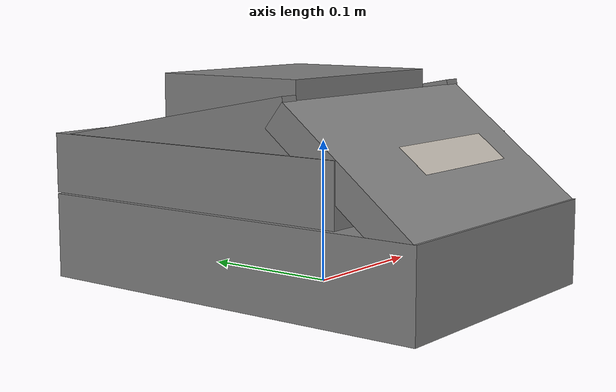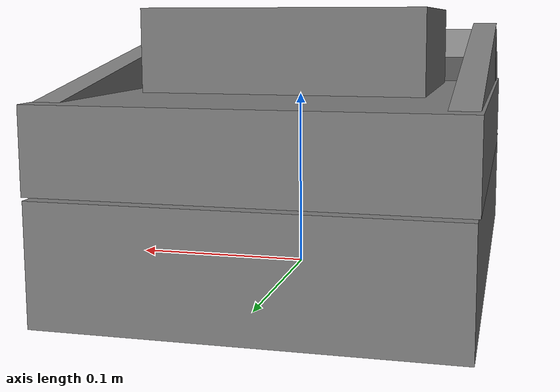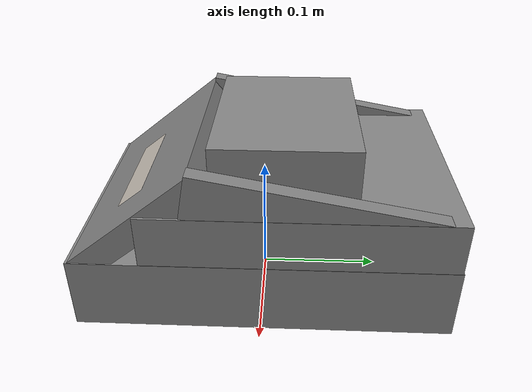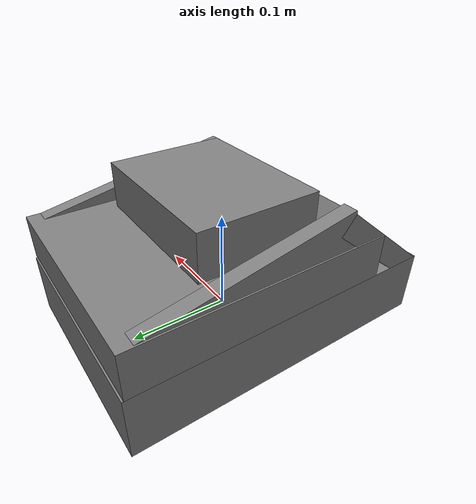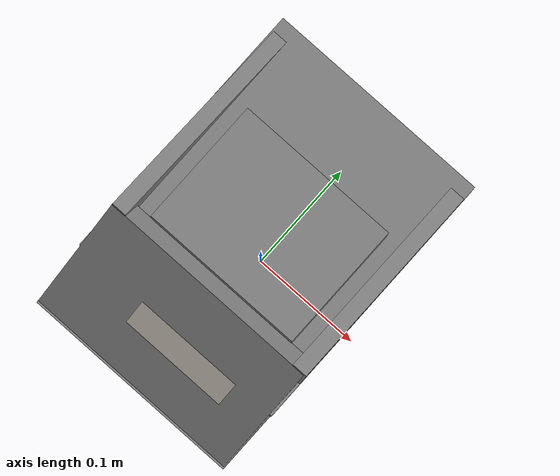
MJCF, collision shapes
<?xml version='1.0' encoding='utf-8'?>
<mujoco model="thermal_mixer_eppendorf_c">
  <compiler angle="radian" autolimits="true" assetdir="../../assets" />
  <default>
    <default class="visual">
      <geom type="mesh" contype="0" conaffinity="0" density="0" group="2" />
      <mesh inertia="shell" />
    </default>
    <default class="inertia">
      <geom type="mesh" contype="0" conaffinity="0" group="5" />
      <mesh inertia="exact" />
    </default>
    <default class="collision">
      <geom type="mesh" contype="0" conaffinity="1" density="0" group="3" />
    </default>
  </default>
  <option gravity="0 0 0" />
  <asset>
    <mesh class="visual" name="body-visual-0" file="instrument/thermal_mixer_eppendorf_c/body-visual-0.obj" />
    <material name="body-0" rgba="0 0.431373 0.968627 1" metallic="0.0" roughness="1.0" />
    <mesh class="visual" name="body-visual-1" file="instrument/thermal_mixer_eppendorf_c/body-visual-1.obj" />
    <texture name="body-0" type="2d" file="instrument/thermal_mixer_eppendorf_c/body-0.png" />
    <material name="body-1" rgba="1 1 1 1" metallic="0.0" roughness="1.0" texture="body-0" />
    <mesh class="visual" name="body-visual-2" file="instrument/thermal_mixer_eppendorf_c/body-visual-2.obj" />
    <material name="body-2" rgba="0.647059 0.619608 0.6 1" metallic="0.0" roughness="1.0" />
    <mesh class="visual" name="body-visual-3" file="instrument/thermal_mixer_eppendorf_c/body-visual-3.obj" />
    <material name="body-3" rgba="0.69019608 0.67058824 0.58431373 1" metallic="0.0" roughness="1.0" />
    <mesh class="visual" name="body-visual-4" file="instrument/thermal_mixer_eppendorf_c/body-visual-4.obj" />
    <material name="body-4" rgba="0.85098 0.85098 0.85098 1" metallic="0.0" roughness="1.0" />
    <mesh class="inertia" name="body-inertia" file="instrument/thermal_mixer_eppendorf_c/body-inertia.obj" />

    <texture name="body-display" type="2d" file="instrument/thermal_mixer_eppendorf_c/body-display-placeholder.png" />
    <material name="body-display" rgba="1 1 1 1" metallic="0.0" roughness="1.0" texture="body-display" emission="0.5" />
  </asset>
  <worldbody>
    <frame pos="0 -0 0.09249817">
      <body name="body" pos="0 0 0" quat="0.5 0.5 0.5 0.5">
        <geom class="visual" mesh="body-visual-0" material="body-0" />
        <geom class="visual" mesh="body-visual-1" material="body-1" />
        <geom class="visual" mesh="body-visual-2" material="body-2" />
        <geom class="visual" mesh="body-visual-3" material="body-3" />
        <geom class="visual" mesh="body-visual-4" material="body-4" />
        <geom class="inertia" mesh="body-inertia" density="1000" />
        <geom class="collision" type="box" size="0.15033577 0.10072497 0.02991682" pos="0.00186334 -0.06069169 -0.00926348" quat="0.70710681 -0.70710675 0 0" />
        <geom class="collision" type="box" size="0.12129409 0.10188704 0.02098387" pos="0.02965375 -0.00846489 -0.00922712" quat="0.70710681 -0.70710675 0 0" />
        <geom class="collision" type="box" size="0.06161729 0.10025134 0.01065979" pos="-0.09332679 -0.00207629 -0.00967234" quat="0.6676502 -0.66765015 -0.23290179 0.23290177" />
        <geom class="collision" type="box" size="0.10204284 0.00683687 0.01765341" pos="0.04575302 0.01185085 0.08553979" quat="0.70408505 -0.704085 0.0653014 -0.0653014" />
        <geom class="collision" type="box" size="0.10204284 0.00683687 0.01765341" pos="0.04575302 0.01185087 -0.10279456" quat="0.70408505 -0.704085 0.0653014 -0.0653014" />
        <geom class="collision" type="box" size="0.05654196 0.07333491 0.02222099" pos="0.01767512 0.03368212 -0.00692018" quat="0.70710681 -0.70710675 0 0" />
        <site name="button-menu-down" group="3" pos="-0.11360512 -0.00302507 -0.071" quat="0.23025696 -0.23025694 0.66856695 -0.6685669" size="0.004 0.004 0.004" />
        <site name="button-menu-enter" group="3" pos="-0.101911 0.00626801 -0.071" quat="0.23025696 -0.23025694 0.66856695 -0.6685669" size="0.004 0.004 0.004" />
        <site name="button-menu-left" group="3" pos="-0.101911 0.00626801 -0.08624256" quat="0.23025696 -0.23025694 0.66856695 -0.6685669" size="0.004 0.004 0.004" />
        <site name="button-menu-right" group="3" pos="-0.101911 0.006268 -0.05631481" quat="0.23025696 -0.23025694 0.66856695 -0.6685669" size="0.004 0.004 0.004" />
        <site name="button-menu-up" group="3" pos="-0.08967406 0.01553446 -0.071" quat="0.23025696 -0.23025694 0.66856695 -0.6685669" size="0.004 0.004 0.004" />
        <site name="button-prog-1" group="3" pos="-0.083912 0.020341 -0.03852143" quat="0.23025696 -0.23025694 0.66856695 -0.6685669" size="0.004 0.004 0.004" />
        <site name="button-prog-2" group="3" pos="-0.083912 0.020341 -0.01569296" quat="0.23025696 -0.23025694 0.66856695 -0.6685669" size="0.004 0.004 0.004" />
        <site name="button-prog-3" group="3" pos="-0.083912 0.020341 0.00645498" quat="0.23025696 -0.23025694 0.66856695 -0.6685669" size="0.004 0.004 0.004" />
        <site name="button-prog-4" group="3" pos="-0.083912 0.020341 0.02790428" quat="0.23025696 -0.23025694 0.66856695 -0.6685669" size="0.004 0.004 0.004" />
        <site name="button-prog-5" group="3" pos="-0.08427557 0.020341 0.05022066" quat="0.23025696 -0.23025694 0.66856695 -0.6685669" size="0.004 0.004 0.004" />
        <site name="button-short" group="3" pos="-0.10231422 0.00569353 0.06800514" quat="0.23025696 -0.23025694 0.66856695 -0.6685669" size="0.004 0.004 0.004" />
        <site name="button-speed-down" group="3" pos="-0.13524599 -0.019868 0.03635469" quat="0.23025696 -0.23025694 0.66856695 -0.6685669" size="0.004 0.004 0.004" />
        <site name="button-speed-up" group="3" pos="-0.12379485 -0.01120483 0.03635469" quat="0.23025696 -0.23025694 0.66856695 -0.6685669" size="0.004 0.004 0.004" />
        <site name="button-start-stop" group="3" pos="-0.12949049 -0.01576343 0.06758012" quat="0.23025696 -0.23025694 0.66856695 -0.6685669" size="0.004 0.004 0.004" />
        <site name="button-temp-down" group="3" pos="-0.13524599 -0.019868 0.00569977" quat="0.23025696 -0.23025694 0.66856695 -0.6685669" size="0.004 0.004 0.004" />
        <site name="button-temp-up" group="3" pos="-0.12379485 -0.01120483 0.00569977" quat="0.23025696 -0.23025694 0.66856695 -0.6685669" size="0.004 0.004 0.004" />
        <site name="button-time-down" group="3" pos="-0.13524599 -0.019868 -0.025083" quat="0.23025696 -0.23025694 0.66856695 -0.6685669" size="0.004 0.004 0.004" />
        <site name="button-time-up" group="3" pos="-0.12379485 -0.01120483 -0.025083" quat="0.23025696 -0.23025694 0.66856695 -0.6685669" size="0.004 0.004 0.004" />
        <site name="thermoblock-function" group="3" pos="-0.0061 0.0665 0.03830001" quat="0.70710681 -0.70710675 0 0" size="0.01 0.01 0.01" user="2 4 0.018144128 6 0.0176925056 0.009904" />

        <geom class="visual" type="plane" pos="-0.102221 0.006093 0.005843" size="0.049369 0.012886 1" quat="0.635543 -0.309975 -0.635543 -0.309975" material="body-display" />
      </body>
    </frame>
  </worldbody>
  <sensor>
    <touch name="button-menu-down" site="button-menu-down" />
    <touch name="button-menu-enter" site="button-menu-enter" />
    <touch name="button-menu-left" site="button-menu-left" />
    <touch name="button-menu-right" site="button-menu-right" />
    <touch name="button-menu-up" site="button-menu-up" />
    <touch name="button-prog-1" site="button-prog-1" />
    <touch name="button-prog-2" site="button-prog-2" />
    <touch name="button-prog-3" site="button-prog-3" />
    <touch name="button-prog-4" site="button-prog-4" />
    <touch name="button-prog-5" site="button-prog-5" />
    <touch name="button-short" site="button-short" />
    <touch name="button-speed-down" site="button-speed-down" />
    <touch name="button-speed-up" site="button-speed-up" />
    <touch name="button-start-stop" site="button-start-stop" />
    <touch name="button-temp-down" site="button-temp-down" />
    <touch name="button-temp-up" site="button-temp-up" />
    <touch name="button-time-down" site="button-time-down" />
    <touch name="button-time-up" site="button-time-up" />
  </sensor>
</mujoco>
